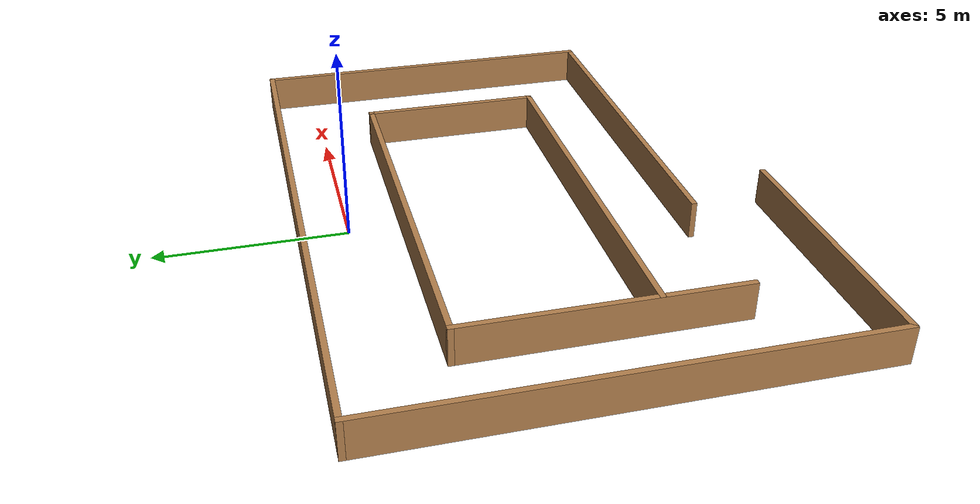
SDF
<?xml version='1.0'?>
<sdf version='1.6'>
  <model name='maze_world'>
    <pose frame=''>-0.055 -4.905 0 0 -0 0</pose>
    <link name='Wall_14'>
      <collision name='Wall_14_Collision'>
        <geometry>
          <box>
            <size>16.5 0.15 1</size>
          </box>
        </geometry>
        <pose frame=''>0 0 0.5 0 -0 0</pose>
      </collision>
      <visual name='Wall_14_Visual'>
        <pose frame=''>0 0 0.5 0 -0 0</pose>
        <geometry>
          <box>
            <size>16.5 0.15 1</size>
          </box>
        </geometry>
        <material>
          <script>
            <uri>file://media/materials/scripts/gazebo.material</uri>
            <name>Gazebo/Wood</name>
          </script>
          <ambient>1 1 1 1</ambient>
        </material>
        <meta>
          <layer>0</layer>
        </meta>
      </visual>
      <pose frame=''>-0 6.175 0 0 -0 0</pose>
    </link>
    <link name='Wall_16'>
      <collision name='Wall_16_Collision'>
        <geometry>
          <box>
            <size>10 0.15 1</size>
          </box>
        </geometry>
        <pose frame=''>0 0 0.5 0 -0 0</pose>
      </collision>
      <visual name='Wall_16_Visual'>
        <pose frame=''>0 0 0.5 0 -0 0</pose>
        <geometry>
          <box>
            <size>10 0.15 1</size>
          </box>
        </geometry>
        <material>
          <script>
            <uri>file://media/materials/scripts/gazebo.material</uri>
            <name>Gazebo/Wood</name>
          </script>
          <ambient>1 1 1 1</ambient>
        </material>
        <meta>
          <layer>0</layer>
        </meta>
      </visual>
      <pose frame=''>8.175 1.25 0 0 -0 -1.5708</pose>
    </link>
    <link name='Wall_19'>
      <collision name='Wall_19_Collision'>
        <geometry>
          <box>
            <size>11 0.15 1</size>
          </box>
        </geometry>
        <pose frame=''>0 0 0.5 0 -0 0</pose>
      </collision>
      <visual name='Wall_19_Visual'>
        <pose frame=''>0 0 0.5 0 -0 0</pose>
        <geometry>
          <box>
            <size>11 0.15 1</size>
          </box>
        </geometry>
        <material>
          <script>
            <uri>file://media/materials/scripts/gazebo.material</uri>
            <name>Gazebo/Wood</name>
          </script>
          <ambient>1 1 1 1</ambient>
        </material>
        <meta>
          <layer>0</layer>
        </meta>
      </visual>
      <pose frame=''>-0.42 -1.355 0 0 -0 3.14159</pose>
    </link>
    <link name='Wall_21'>
      <collision name='Wall_21_Collision'>
        <geometry>
          <box>
            <size>12.5 0.15 1</size>
          </box>
        </geometry>
        <pose frame=''>0 0 0.5 0 -0 0</pose>
      </collision>
      <visual name='Wall_21_Visual'>
        <pose frame=''>0 0 0.5 0 -0 0</pose>
        <geometry>
          <box>
            <size>12.5 0.15 1</size>
          </box>
        </geometry>
        <material>
          <script>
            <uri>file://media/materials/scripts/gazebo.material</uri>
            <name>Gazebo/Wood</name>
          </script>
          <ambient>1 1 1 1</ambient>
        </material>
        <meta>
          <layer>0</layer>
        </meta>
      </visual>
      <pose frame=''>-8.175 -0 0 0 -0 -1.5708</pose>
    </link>
    <link name='Wall_22'>
      <collision name='Wall_22_Collision'>
        <geometry>
          <box>
            <size>7.25 0.15 1</size>
          </box>
        </geometry>
        <pose frame=''>0 0 0.5 0 -0 0</pose>
      </collision>
      <visual name='Wall_22_Visual'>
        <pose frame=''>0 0 0.5 0 -0 0</pose>
        <geometry>
          <box>
            <size>7.25 0.15 1</size>
          </box>
        </geometry>
        <material>
          <script>
            <uri>file://media/materials/scripts/gazebo.material</uri>
            <name>Gazebo/Wood</name>
          </script>
          <ambient>1 1 1 1</ambient>
        </material>
        <meta>
          <layer>0</layer>
        </meta>
      </visual>
      <pose frame=''>-4.625 -6.175 0 0 -0 0</pose>
    </link>
    <link name='Wall_24'>
      <collision name='Wall_24_Collision'>
        <geometry>
          <box>
            <size>10.5 0.15 1</size>
          </box>
        </geometry>
        <pose frame=''>0 0 0.5 0 -0 0</pose>
      </collision>
      <visual name='Wall_24_Visual'>
        <pose frame=''>0 0 0.5 0 -0 0</pose>
        <geometry>
          <box>
            <size>10.5 0.15 1</size>
          </box>
        </geometry>
        <material>
          <script>
            <uri>file://media/materials/scripts/gazebo.material</uri>
            <name>Gazebo/Wood</name>
          </script>
          <ambient>1 1 1 1</ambient>
        </material>
        <meta>
          <layer>0</layer>
        </meta>
      </visual>
      <pose frame=''>3 -3.675 0 0 -0 3.14159</pose>
    </link>
    <link name='Wall_4'>
      <collision name='Wall_4_Collision'>
        <geometry>
          <box>
            <size>11 0.15 1</size>
          </box>
        </geometry>
        <pose frame=''>0 0 0.5 0 -0 0</pose>
      </collision>
      <visual name='Wall_4_Visual'>
        <pose frame=''>0 0 0.5 0 -0 0</pose>
        <geometry>
          <box>
            <size>11 0.15 1</size>
          </box>
        </geometry>
        <material>
          <script>
            <uri>file://media/materials/scripts/gazebo.material</uri>
            <name>Gazebo/Wood</name>
          </script>
          <ambient>1 1 1 1</ambient>
        </material>
        <meta>
          <layer>0</layer>
        </meta>
      </visual>
      <pose frame=''>-0.42 3.495 0 0 -0 0</pose>
    </link>
    <link name='Wall_5'>
      <collision name='Wall_5_Collision'>
        <geometry>
          <box>
            <size>5 0.15 1</size>
          </box>
        </geometry>
        <pose frame=''>0 0 0.5 0 -0 0</pose>
      </collision>
      <visual name='Wall_5_Visual'>
        <pose frame=''>0 0 0.5 0 -0 0</pose>
        <geometry>
          <box>
            <size>5 0.15 1</size>
          </box>
        </geometry>
        <material>
          <script>
            <uri>file://media/materials/scripts/gazebo.material</uri>
            <name>Gazebo/Wood</name>
          </script>
          <ambient>1 1 1 1</ambient>
        </material>
        <meta>
          <layer>0</layer>
        </meta>
      </visual>
      <pose frame=''>5.005 1.07 0 0 -0 -1.5708</pose>
    </link>
    <link name='Wall_8'>
      <collision name='Wall_8_Collision'>
        <geometry>
          <box>
            <size>7.25 0.15 1</size>
          </box>
        </geometry>
        <pose frame=''>0 0 0.5 0 -0 0</pose>
      </collision>
      <visual name='Wall_8_Visual'>
        <pose frame=''>0 0 0.5 0 -0 0</pose>
        <geometry>
          <box>
            <size>7.25 0.15 1</size>
          </box>
        </geometry>
        <material>
          <script>
            <uri>file://media/materials/scripts/gazebo.material</uri>
            <name>Gazebo/Wood</name>
          </script>
          <ambient>1 1 1 1</ambient>
        </material>
        <meta>
          <layer>0</layer>
        </meta>
      </visual>
      <pose frame=''>-5.845 -0.055 0 0 -0 -1.5708</pose>
    </link>
    <static>1</static>
  </model>
</sdf>
